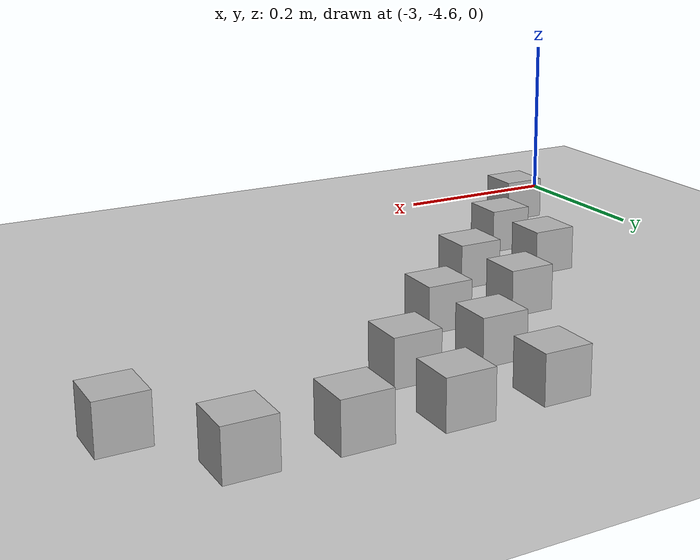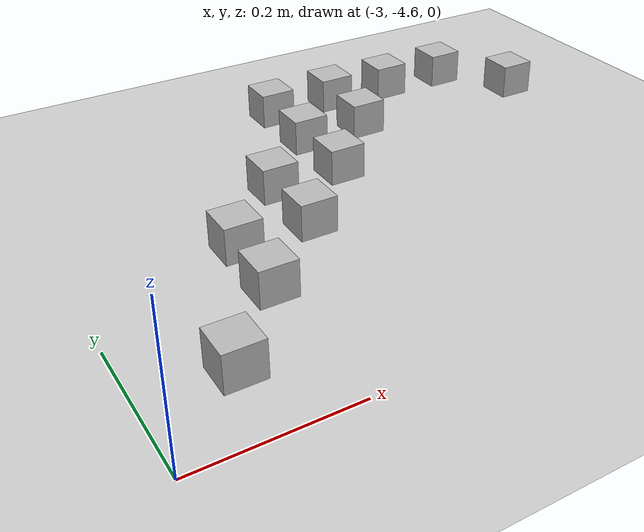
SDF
<sdf version="1.6">
 <world name="default">
  <model name="ground_plane">
   <static>1</static>
   <link name="link">
    <collision name="collision">
     <geometry><plane><normal>0 0 1</normal><size>100 100</size></plane></geometry>
     <surface><friction><ode><mu>100</mu><mu2>50</mu2></ode></friction></surface>
    </collision>
    <visual name="visual">
     <cast_shadows>0</cast_shadows>
     <geometry><plane><normal>0 0 1</normal><size>100 100</size></plane></geometry>
     <material>
      <script><uri>file://media/materials/scripts/gazebo.material</uri><name>Gazebo/Grey</name></script>
     </material>
    </visual>
   </link>
  </model>
  <model name="at197">
   <static>0</static>
   <link name="link">
    <inertial>
     <mass>0.01</mass>
     <inertia><ixx>4e-05</ixx><ixy>0</ixy><ixz>0</ixz><iyy>4e-05</iyy><iyz>0</iyz><izz>4e-05</izz></inertia>
    </inertial>
    <visual name="visual">
     <geometry><box><size>0.05 0.05 0.05</size></box></geometry>
     <material>
      <script>
       <uri>model://at0/materials/scripts</uri>
       <uri>model://at0/materials/textures</uri>
       <name>at0/Diffuse</name>
      </script>
     </material>
    </visual>
    <collision name="collision">
     <geometry><box><size>0.05 0.05 0.05</size></box></geometry>
     <surface><friction><ode><mu>0.8</mu><mu2>0.7</mu2></ode></friction></surface>
    </collision>
   </link>
   <pose>-2.8 -4.3 0.025 0 -0 0</pose>
  </model>
  <model name="at198">
   <static>0</static>
   <link name="link">
    <inertial>
     <mass>0.01</mass>
     <inertia><ixx>4e-05</ixx><ixy>0</ixy><ixz>0</ixz><iyy>4e-05</iyy><iyz>0</iyz><izz>4e-05</izz></inertia>
    </inertial>
    <visual name="visual">
     <geometry><box><size>0.05 0.05 0.05</size></box></geometry>
     <material>
      <script>
       <uri>model://at0/materials/scripts</uri>
       <uri>model://at0/materials/textures</uri>
       <name>at0/Diffuse</name>
      </script>
     </material>
    </visual>
    <collision name="collision">
     <geometry><box><size>0.05 0.05 0.05</size></box></geometry>
     <surface><friction><ode><mu>0.8</mu><mu2>0.7</mu2></ode></friction></surface>
    </collision>
   </link>
   <pose>-2.7 -4.3 0.025 0 -0 0</pose>
  </model>
  <model name="at199">
   <static>0</static>
   <link name="link">
    <inertial>
     <mass>0.01</mass>
     <inertia><ixx>4e-05</ixx><ixy>0</ixy><ixz>0</ixz><iyy>4e-05</iyy><iyz>0</iyz><izz>4e-05</izz></inertia>
    </inertial>
    <visual name="visual">
     <geometry><box><size>0.05 0.05 0.05</size></box></geometry>
     <material>
      <script>
       <uri>model://at0/materials/scripts</uri>
       <uri>model://at0/materials/textures</uri>
       <name>at0/Diffuse</name>
      </script>
     </material>
    </visual>
    <collision name="collision">
     <geometry><box><size>0.05 0.05 0.05</size></box></geometry>
     <surface><friction><ode><mu>0.8</mu><mu2>0.7</mu2></ode></friction></surface>
    </collision>
   </link>
   <pose>-2.2289 -4.09818 0.025 0 -0 0</pose>
  </model>
  <model name="at205">
   <static>0</static>
   <link name="link">
    <inertial>
     <mass>0.01</mass>
     <inertia><ixx>4e-05</ixx><ixy>0</ixy><ixz>0</ixz><iyy>4e-05</iyy><iyz>0</iyz><izz>4e-05</izz></inertia>
    </inertial>
    <visual name="visual">
     <geometry><box><size>0.05 0.05 0.05</size></box></geometry>
     <material>
      <script>
       <uri>model://at0/materials/scripts</uri>
       <uri>model://at0/materials/textures</uri>
       <name>at0/Diffuse</name>
      </script>
     </material>
    </visual>
    <collision name="collision">
     <geometry><box><size>0.05 0.05 0.05</size></box></geometry>
     <surface><friction><ode><mu>0.8</mu><mu2>0.7</mu2></ode></friction></surface>
    </collision>
   </link>
   <pose>-2.30097 -4.0051 0.025 0 -0 0</pose>
  </model>
  <model name="at206">
   <static>0</static>
   <link name="link">
    <inertial>
     <mass>0.01</mass>
     <inertia><ixx>4e-05</ixx><ixy>0</ixy><ixz>0</ixz><iyy>4e-05</iyy><iyz>0</iyz><izz>4e-05</izz></inertia>
    </inertial>
    <visual name="visual">
     <geometry><box><size>0.05 0.05 0.05</size></box></geometry>
     <material>
      <script>
       <uri>model://at0/materials/scripts</uri>
       <uri>model://at0/materials/textures</uri>
       <name>at0/Diffuse</name>
      </script>
     </material>
    </visual>
    <collision name="collision">
     <geometry><box><size>0.05 0.05 0.05</size></box></geometry>
     <surface><friction><ode><mu>0.8</mu><mu2>0.7</mu2></ode></friction></surface>
    </collision>
   </link>
   <pose>-2.7 -4.2 0.025 0 -0 0</pose>
  </model>
  <model name="at207">
   <static>0</static>
   <link name="link">
    <inertial>
     <mass>0.01</mass>
     <inertia><ixx>4e-05</ixx><ixy>0</ixy><ixz>0</ixz><iyy>4e-05</iyy><iyz>0</iyz><izz>4e-05</izz></inertia>
    </inertial>
    <visual name="visual">
     <geometry><box><size>0.05 0.05 0.05</size></box></geometry>
     <material>
      <script>
       <uri>model://at0/materials/scripts</uri>
       <uri>model://at0/materials/textures</uri>
       <name>at0/Diffuse</name>
      </script>
     </material>
    </visual>
    <collision name="collision">
     <geometry><box><size>0.05 0.05 0.05</size></box></geometry>
     <surface><friction><ode><mu>0.8</mu><mu2>0.7</mu2></ode></friction></surface>
    </collision>
   </link>
   <pose>-2.6 -4.2 0.025 0 -0 0</pose>
  </model>
  <model name="at209">
   <static>0</static>
   <link name="link">
    <inertial>
     <mass>0.01</mass>
     <inertia><ixx>4e-05</ixx><ixy>0</ixy><ixz>0</ixz><iyy>4e-05</iyy><iyz>0</iyz><izz>4e-05</izz></inertia>
    </inertial>
    <visual name="visual">
     <geometry><box><size>0.05 0.05 0.05</size></box></geometry>
     <material>
      <script>
       <uri>model://at0/materials/scripts</uri>
       <uri>model://at0/materials/textures</uri>
       <name>at0/Diffuse</name>
      </script>
     </material>
    </visual>
    <collision name="collision">
     <geometry><box><size>0.05 0.05 0.05</size></box></geometry>
     <surface><friction><ode><mu>0.8</mu><mu2>0.7</mu2></ode></friction></surface>
    </collision>
   </link>
   <pose>-2.40228 -4.00289 0.025 0 -0 0</pose>
  </model>
  <model name="at213">
   <static>0</static>
   <link name="link">
    <inertial>
     <mass>0.01</mass>
     <inertia><ixx>4e-05</ixx><ixy>0</ixy><ixz>0</ixz><iyy>4e-05</iyy><iyz>0</iyz><izz>4e-05</izz></inertia>
    </inertial>
    <visual name="visual">
     <geometry><box><size>0.05 0.05 0.05</size></box></geometry>
     <material>
      <script>
       <uri>model://at0/materials/scripts</uri>
       <uri>model://at0/materials/textures</uri>
       <name>at0/Diffuse</name>
      </script>
     </material>
    </visual>
    <collision name="collision">
     <geometry><box><size>0.05 0.05 0.05</size></box></geometry>
     <surface><friction><ode><mu>0.8</mu><mu2>0.7</mu2></ode></friction></surface>
    </collision>
   </link>
   <pose>-2.50366 -4.09808 0.025 0 -0 0</pose>
  </model>
  <model name="at215">
   <static>0</static>
   <link name="link">
    <inertial>
     <mass>0.01</mass>
     <inertia><ixx>4e-05</ixx><ixy>0</ixy><ixz>0</ixz><iyy>4e-05</iyy><iyz>0</iyz><izz>4e-05</izz></inertia>
    </inertial>
    <visual name="visual">
     <geometry><box><size>0.05 0.05 0.05</size></box></geometry>
     <material>
      <script>
       <uri>model://at0/materials/scripts</uri>
       <uri>model://at0/materials/textures</uri>
       <name>at0/Diffuse</name>
      </script>
     </material>
    </visual>
    <collision name="collision">
     <geometry><box><size>0.05 0.05 0.05</size></box></geometry>
     <surface><friction><ode><mu>0.8</mu><mu2>0.7</mu2></ode></friction></surface>
    </collision>
   </link>
   <pose>-2.6 -4.1 0.025 0 -0 0</pose>
  </model>
  <model name="at221">
   <static>0</static>
   <link name="link">
    <inertial>
     <mass>0.01</mass>
     <inertia><ixx>4e-05</ixx><ixy>0</ixy><ixz>0</ixz><iyy>4e-05</iyy><iyz>0</iyz><izz>4e-05</izz></inertia>
    </inertial>
    <visual name="visual">
     <geometry><box><size>0.05 0.05 0.05</size></box></geometry>
     <material>
      <script>
       <uri>model://at0/materials/scripts</uri>
       <uri>model://at0/materials/textures</uri>
       <name>at0/Diffuse</name>
      </script>
     </material>
    </visual>
    <collision name="collision">
     <geometry><box><size>0.05 0.05 0.05</size></box></geometry>
     <surface><friction><ode><mu>0.8</mu><mu2>0.7</mu2></ode></friction></surface>
    </collision>
   </link>
   <pose>-2.49797 -3.99824 0.025 0 -0 0</pose>
  </model>
  <model name="at222">
   <static>0</static>
   <link name="link">
    <inertial>
     <mass>0.01</mass>
     <inertia><ixx>4e-05</ixx><ixy>0</ixy><ixz>0</ixz><iyy>4e-05</iyy><iyz>0</iyz><izz>4e-05</izz></inertia>
    </inertial>
    <visual name="visual">
     <geometry><box><size>0.05 0.05 0.05</size></box></geometry>
     <material>
      <script>
       <uri>model://at0/materials/scripts</uri>
       <uri>model://at0/materials/textures</uri>
       <name>at0/Diffuse</name>
      </script>
     </material>
    </visual>
    <collision name="collision">
     <geometry><box><size>0.05 0.05 0.05</size></box></geometry>
     <surface><friction><ode><mu>0.8</mu><mu2>0.7</mu2></ode></friction></surface>
    </collision>
   </link>
   <pose>-2.80372 -4.39537 0.025 0 -0 0</pose>
  </model>
  <model name="at223">
   <static>0</static>
   <link name="link">
    <inertial>
     <mass>0.01</mass>
     <inertia><ixx>4e-05</ixx><ixy>0</ixy><ixz>0</ixz><iyy>4e-05</iyy><iyz>0</iyz><izz>4e-05</izz></inertia>
    </inertial>
    <visual name="visual">
     <geometry><box><size>0.05 0.05 0.05</size></box></geometry>
     <material>
      <script>
       <uri>model://at0/materials/scripts</uri>
       <uri>model://at0/materials/textures</uri>
       <name>at0/Diffuse</name>
      </script>
     </material>
    </visual>
    <collision name="collision">
     <geometry><box><size>0.05 0.05 0.05</size></box></geometry>
     <surface><friction><ode><mu>0.8</mu><mu2>0.7</mu2></ode></friction></surface>
    </collision>
   </link>
   <pose>-2.6 -4 0.025 0 -0 0</pose>
  </model>
  <model name="at225">
   <static>0</static>
   <link name="link">
    <inertial>
     <mass>0.01</mass>
     <inertia><ixx>4e-05</ixx><ixy>0</ixy><ixz>0</ixz><iyy>4e-05</iyy><iyz>0</iyz><izz>4e-05</izz></inertia>
    </inertial>
    <visual name="visual">
     <geometry><box><size>0.05 0.05 0.05</size></box></geometry>
     <material>
      <script>
       <uri>model://at0/materials/scripts</uri>
       <uri>model://at0/materials/textures</uri>
       <name>at0/Diffuse</name>
      </script>
     </material>
    </visual>
    <collision name="collision">
     <geometry><box><size>0.05 0.05 0.05</size></box></geometry>
     <surface><friction><ode><mu>0.8</mu><mu2>0.7</mu2></ode></friction></surface>
    </collision>
   </link>
   <pose>-2.89445 -4.4991 0.025 0 -0 0</pose>
  </model>
 </world>
</sdf>
